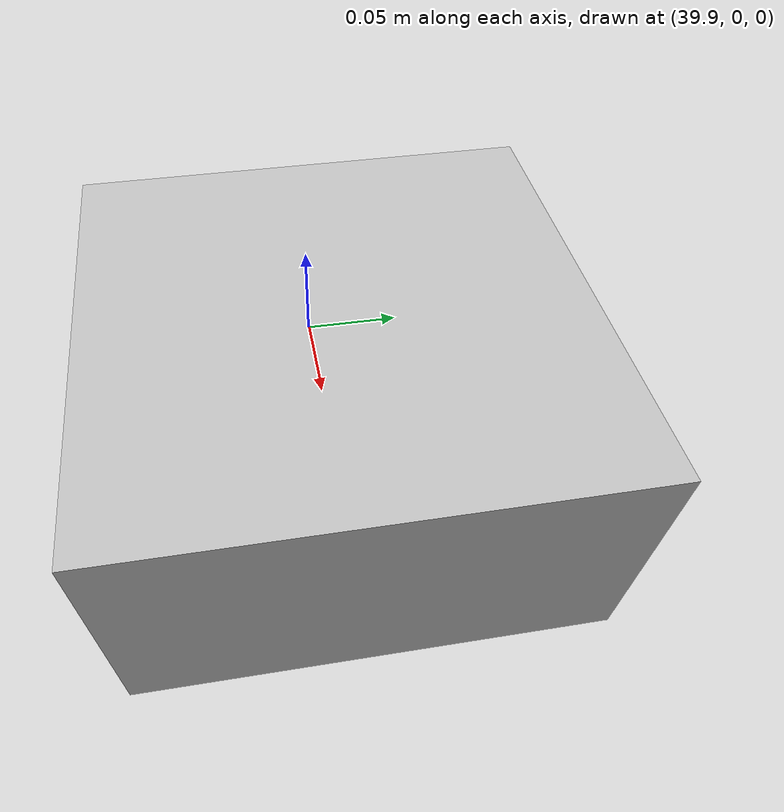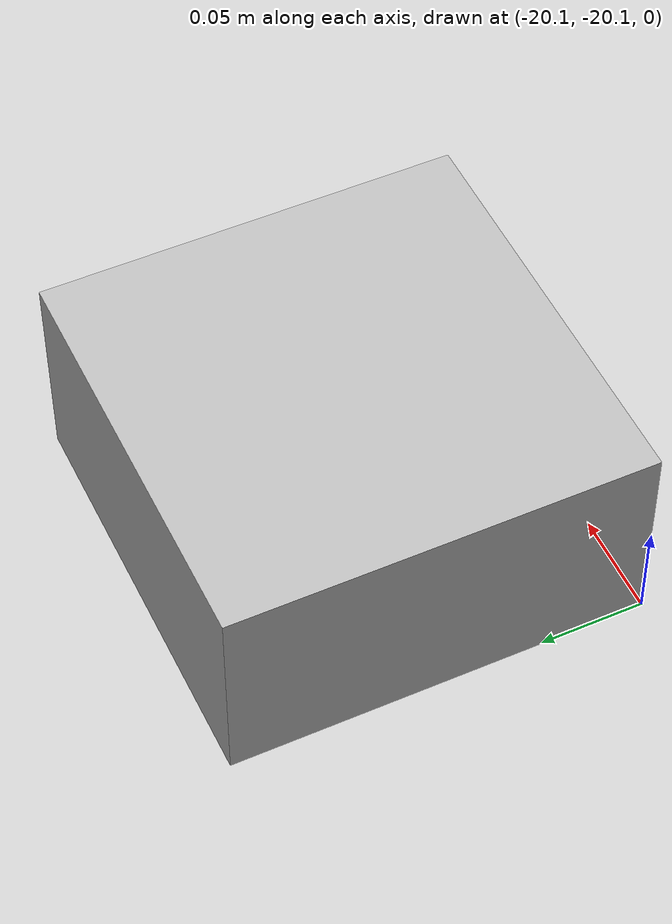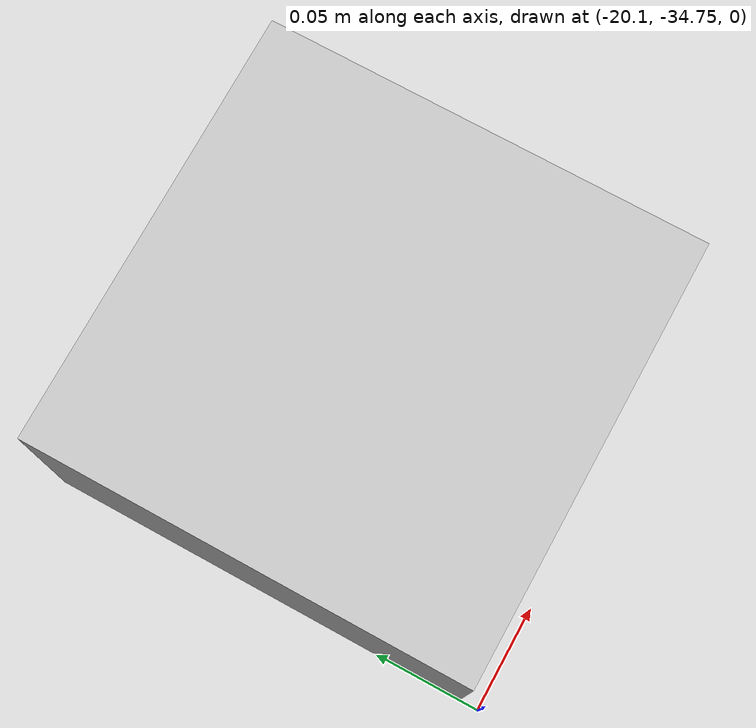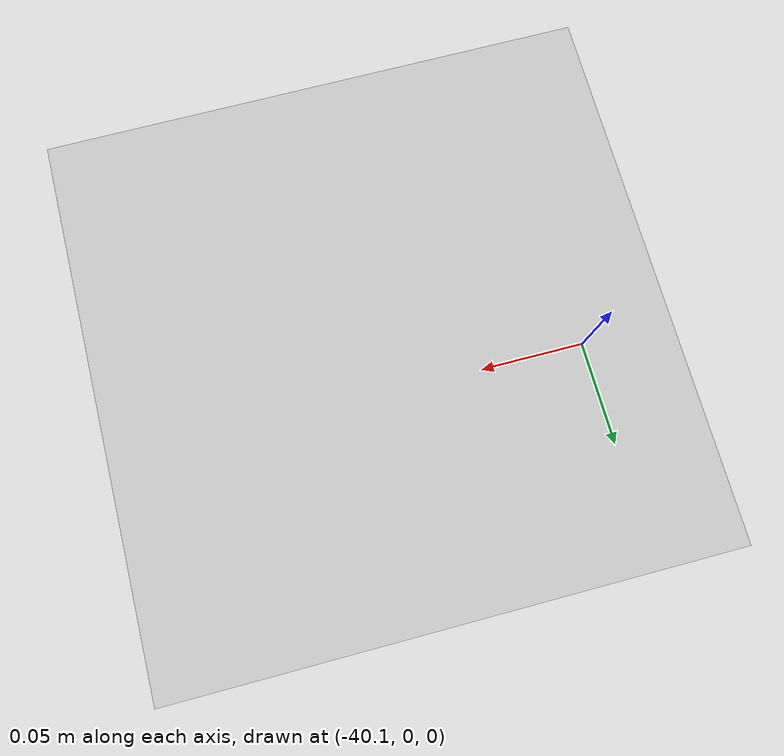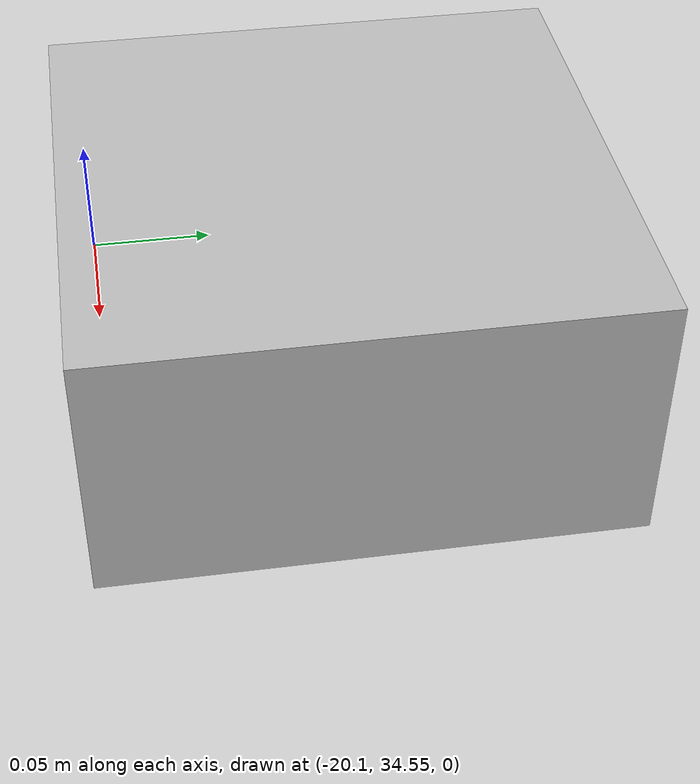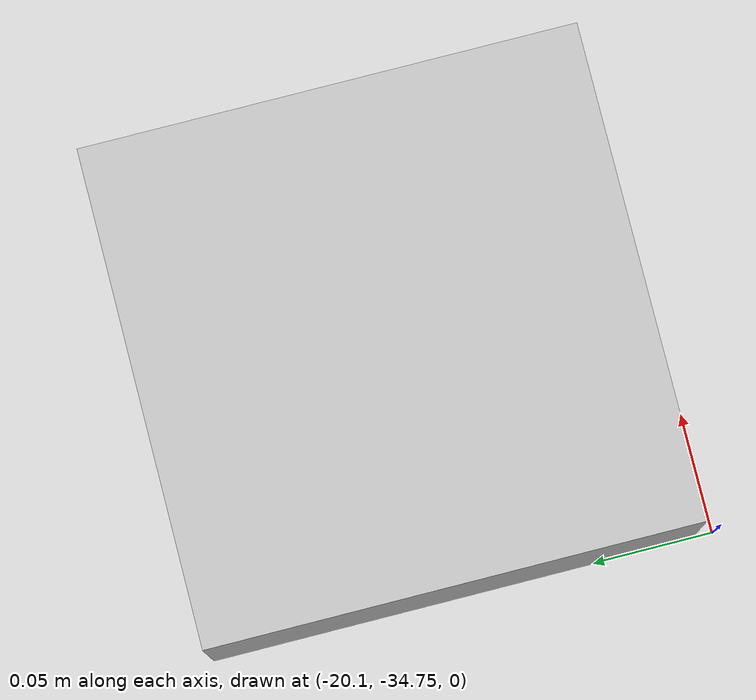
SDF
<?xml version="1.0" ?>
<sdf version="1.5">
  <world name="klaus1">
  	<include>
      <uri>model://ground_plane</uri>
    </include>
  	<model name="uwb_anchor0">
		<pose>40 0.0 0.0 0 0 0 1</pose>
      		<static>1</static>
      		<link name="link">
        		<visual name="visual">
          			<geometry>
            				<box>
              					<size>0.2 0.2 0.2</size>
            				</box>
          			</geometry>
        		</visual>
      		</link>
    </model>
    <model name="uwb_anchor1">
		<pose>-20 -34.6410 0.0 0 0 0 1</pose>
      		<static>1</static>
      		<link name="link">
        		<visual name="visual">
          			<geometry>
            				<box>
              					<size>0.2 0.2 0.2</size>
            				</box>
          			</geometry>
        		</visual>
      		</link>
    </model>
    <model name="uwb_anchor2">
		<pose>-20 34.6410 0.0 0 0 0 1</pose>
      		<static>1</static>
      		<link name="link">
        		<visual name="visual">
          			<geometry>
            				<box>
              					<size>0.2 0.2 0.2</size>
            				</box>
          			</geometry>
        		</visual>
      		</link>
    </model>
    <model name="uwb_anchor3">
		<pose>-40 0.0 0.0 0 0 0 1</pose>
      		<static>1</static>
      		<link name="link">
        		<visual name="visual">
          			<geometry>
            				<box>
              					<size>0.2 0.2 0.2</size>
            				</box>
          			</geometry>
        		</visual>
      		</link>
    </model>

    <model name="uwb_anchor4">
		<pose>-20 -20.0 0.0 0 0 0 1</pose>
      		<static>1</static>
      		<link name="link">
        		<visual name="visual">
          			<geometry>
            				<box>
              					<size>0.2 0.2 0.2</size>
            				</box>
          			</geometry>
        		</visual>
      		</link>
    </model>
  </world>
 </sdf>
